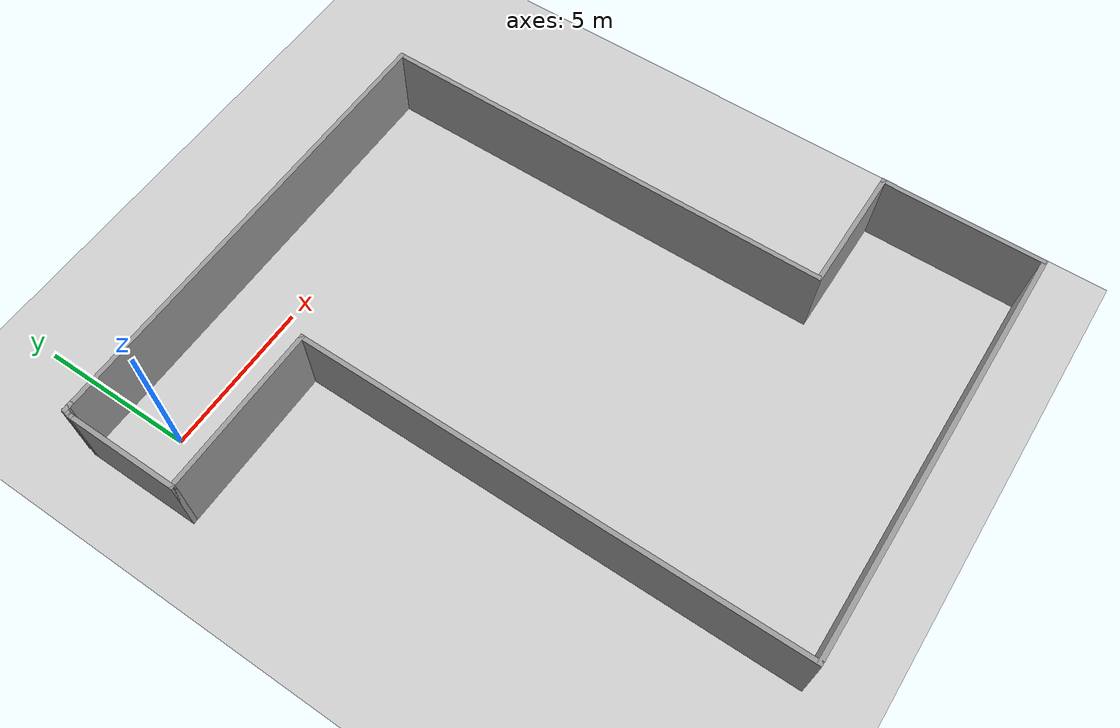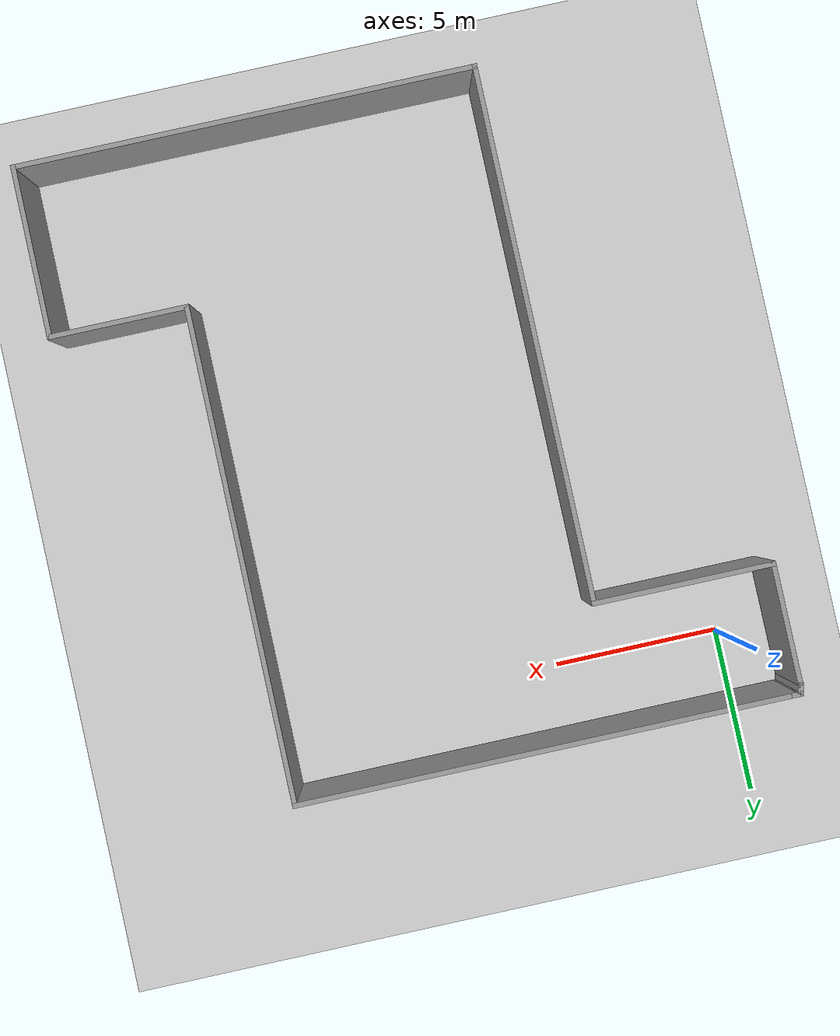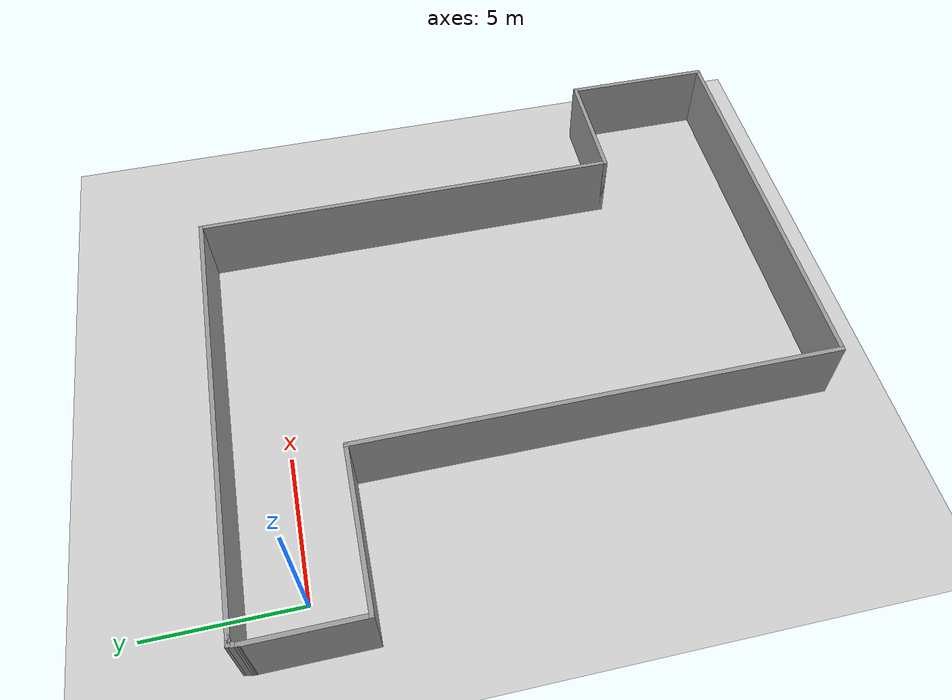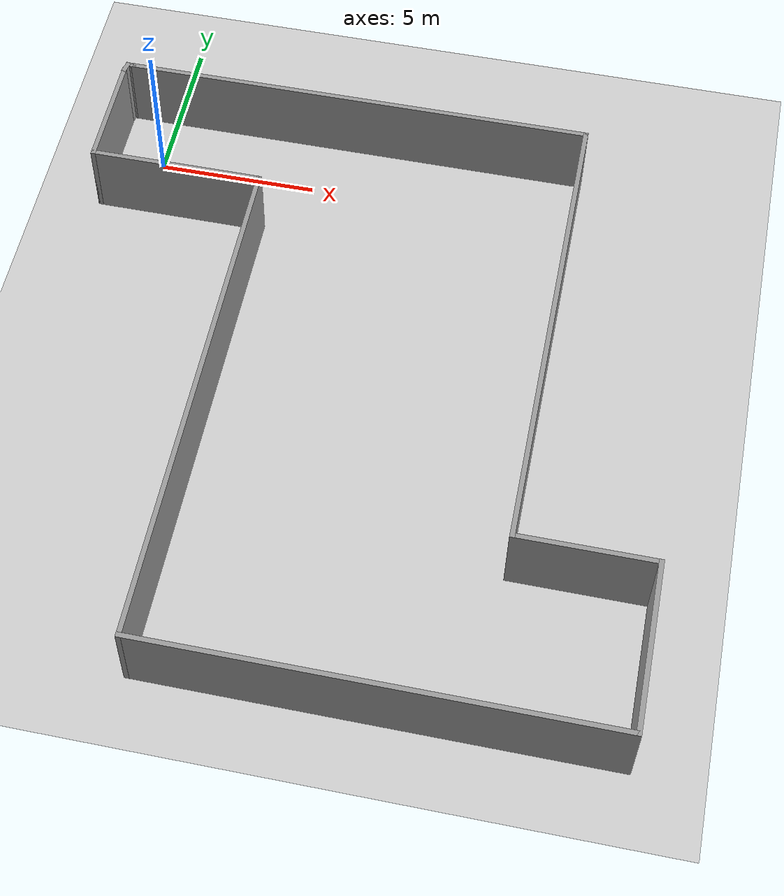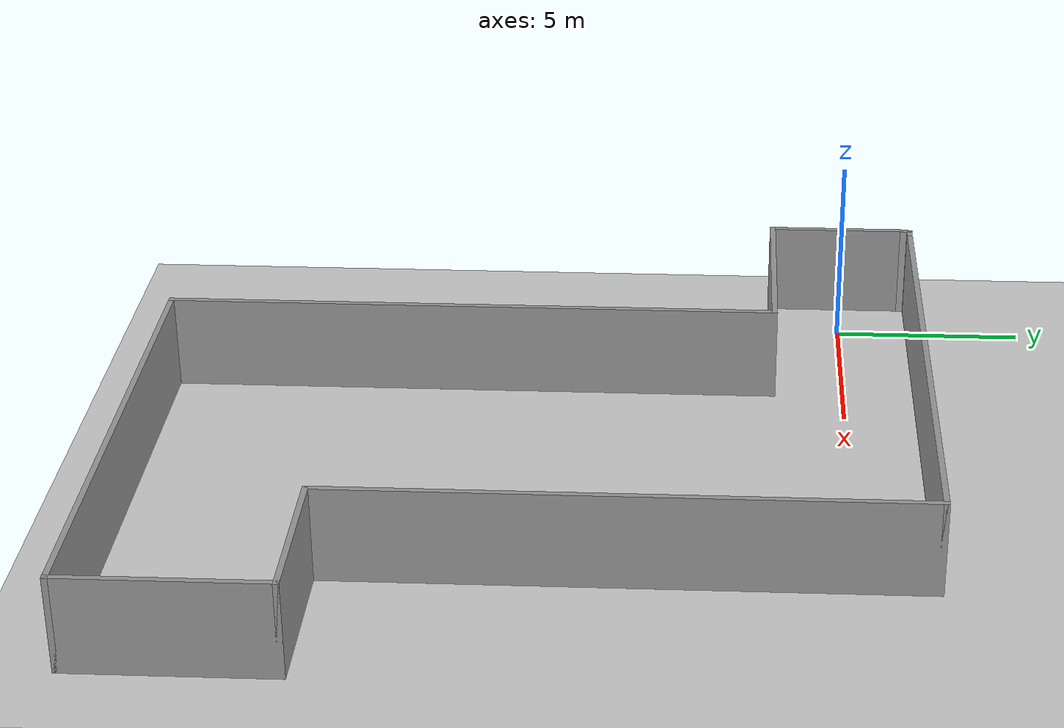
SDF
<?xml version="1.0" ?>
<sdf version="1.4">
  <world name="test_env2">
    <include>
      <uri>model://ground_plane</uri>
    </include>
    <include>
      <uri>model://sun</uri>
    </include>
    <include>
      <uri>model://test_env2</uri>
      <name>test_environment2</name>
      <pose>8.0 -8.0 0 0 0 -1.5707</pose>
    </include>
  </world>
</sdf>

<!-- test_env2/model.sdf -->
<sdf version='1.6'>
  <model name='test_env2'>
    <pose frame=''>-0.430365 1.38208 0 0 -0 0</pose>
    <link name='Wall_0'>
      <collision name='Wall_0_Collision'>
        <geometry>
          <box>
            <size>15 0.15 2.5</size>
          </box>
        </geometry>
        <pose frame=''>0 0 1.25 0 -0 0</pose>
      </collision>
      <visual name='Wall_0_Visual'>
        <pose frame=''>0 0 1.25 0 -0 0</pose>
        <geometry>
          <box>
            <size>15 0.15 2.5</size>
          </box>
        </geometry>
        <material>
          <script>
            <uri>file://media/materials/scripts/gazebo.material</uri>
            <name>Gazebo/Grey</name>
          </script>
          <ambient>1 1 1 1</ambient>
        </material>
      </visual>
      <pose frame=''>-9.96837 -1.91837 0 0 -0 1.5708</pose>
    </link>
    <link name='Wall_1'>
      <collision name='Wall_1_Collision'>
        <geometry>
          <box>
            <size>15 0.15 2.5</size>
          </box>
        </geometry>
        <pose frame=''>0 0 1.25 0 -0 0</pose>
      </collision>
      <visual name='Wall_1_Visual'>
        <pose frame=''>0 0 1.25 0 -0 0</pose>
        <geometry>
          <box>
            <size>15 0.15 2.5</size>
          </box>
        </geometry>
        <material>
          <script>
            <uri>file://media/materials/scripts/gazebo.material</uri>
            <name>Gazebo/Grey</name>
          </script>
          <ambient>1 1 1 1</ambient>
        </material>
      </visual>
      <pose frame=''>-2.54338 5.50663 0 0 -0 0</pose>
    </link>
    <link name='Wall_10'>
      <collision name='Wall_10_Collision'>
        <geometry>
          <box>
            <size>3.75 0.15 2.5</size>
          </box>
        </geometry>
        <pose frame=''>0 0 1.25 0 -0 0</pose>
      </collision>
      <visual name='Wall_10_Visual'>
        <pose frame=''>0 0 1.25 0 -0 0</pose>
        <geometry>
          <box>
            <size>3.75 0.15 2.5</size>
          </box>
        </geometry>
        <material>
          <script>
            <uri>file://media/materials/scripts/gazebo.material</uri>
            <name>Gazebo/Grey</name>
          </script>
          <ambient>1 1 1 1</ambient>
        </material>
      </visual>
      <pose frame=''>-7.91838 -9.59337 0 0 -0 3.14159</pose>
    </link>
    <link name='Wall_11'>
      <collision name='Wall_11_Collision'>
        <geometry>
          <box>
            <size>0.15 0.15 2.5</size>
          </box>
        </geometry>
        <pose frame=''>0 0 1.25 0 -0 0</pose>
      </collision>
      <visual name='Wall_11_Visual'>
        <pose frame=''>0 0 1.25 0 -0 0</pose>
        <geometry>
          <box>
            <size>0.15 0.15 2.5</size>
          </box>
        </geometry>
        <material>
          <script>
            <uri>file://media/materials/scripts/gazebo.material</uri>
            <name>Gazebo/Grey</name>
          </script>
          <ambient>1 1 1 1</ambient>
        </material>
      </visual>
      <pose frame=''>-9.71837 -9.59337 0 0 -0 0</pose>
    </link>
    <link name='Wall_16'>
      <collision name='Wall_16_Collision'>
        <geometry>
          <box>
            <size>0.25 0.15 2.5</size>
          </box>
        </geometry>
        <pose frame=''>0 0 1.25 0 -0 0</pose>
      </collision>
      <visual name='Wall_16_Visual'>
        <pose frame=''>0 0 1.25 0 -0 0</pose>
        <geometry>
          <box>
            <size>0.25 0.15 2.5</size>
          </box>
        </geometry>
        <material>
          <script>
            <uri>file://media/materials/scripts/gazebo.material</uri>
            <name>Gazebo/Grey</name>
          </script>
          <ambient>1 1 1 1</ambient>
        </material>
      </visual>
      <pose frame=''>-9.96837 -9.39337 0 0 0 -1.5708</pose>
    </link>
    <link name='Wall_19'>
      <collision name='Wall_19_Collision'>
        <geometry>
          <box>
            <size>0.25 0.15 2.5</size>
          </box>
        </geometry>
        <pose frame=''>0 0 1.25 0 -0 0</pose>
      </collision>
      <visual name='Wall_19_Visual'>
        <pose frame=''>0 0 1.25 0 -0 0</pose>
        <geometry>
          <box>
            <size>0.25 0.15 2.5</size>
          </box>
        </geometry>
        <material>
          <script>
            <uri>file://media/materials/scripts/gazebo.material</uri>
            <name>Gazebo/Grey</name>
          </script>
          <ambient>1 1 1 1</ambient>
        </material>
      </visual>
      <pose frame=''>-9.96837 -9.49337 0 0 0 -1.5708</pose>
    </link>
    <link name='Wall_20'>
      <collision name='Wall_20_Collision'>
        <geometry>
          <box>
            <size>0.404951 0.15 2.5</size>
          </box>
        </geometry>
        <pose frame=''>0 0 1.25 0 -0 0</pose>
      </collision>
      <visual name='Wall_20_Visual'>
        <pose frame=''>0 0 1.25 0 -0 0</pose>
        <geometry>
          <box>
            <size>0.404951 0.15 2.5</size>
          </box>
        </geometry>
        <material>
          <script>
            <uri>file://media/materials/scripts/gazebo.material</uri>
            <name>Gazebo/Grey</name>
          </script>
          <ambient>1 1 1 1</ambient>
        </material>
      </visual>
      <pose frame=''>-9.84337 -9.56837 0 0 0 -0.197396</pose>
    </link>
    <link name='Wall_5'>
      <collision name='Wall_5_Collision'>
        <geometry>
          <box>
            <size>4.25 0.15 2.5</size>
          </box>
        </geometry>
        <pose frame=''>0 0 1.25 0 -0 0</pose>
      </collision>
      <visual name='Wall_5_Visual'>
        <pose frame=''>0 0 1.25 0 -0 0</pose>
        <geometry>
          <box>
            <size>4.25 0.15 2.5</size>
          </box>
        </geometry>
        <material>
          <script>
            <uri>file://media/materials/scripts/gazebo.material</uri>
            <name>Gazebo/Grey</name>
          </script>
          <ambient>1 1 1 1</ambient>
        </material>
      </visual>
      <pose frame=''>4.88163 7.55663 0 0 -0 1.5708</pose>
    </link>
    <link name='Wall_6'>
      <collision name='Wall_6_Collision'>
        <geometry>
          <box>
            <size>5.25 0.15 2.5</size>
          </box>
        </geometry>
        <pose frame=''>0 0 1.25 0 -0 0</pose>
      </collision>
      <visual name='Wall_6_Visual'>
        <pose frame=''>0 0 1.25 0 -0 0</pose>
        <geometry>
          <box>
            <size>5.25 0.15 2.5</size>
          </box>
        </geometry>
        <material>
          <script>
            <uri>file://media/materials/scripts/gazebo.material</uri>
            <name>Gazebo/Grey</name>
          </script>
          <ambient>1 1 1 1</ambient>
        </material>
      </visual>
      <pose frame=''>7.43163 9.60663 0 0 -0 0</pose>
    </link>
    <link name='Wall_7'>
      <collision name='Wall_7_Collision'>
        <geometry>
          <box>
            <size>14 0.15 2.5</size>
          </box>
        </geometry>
        <pose frame=''>0 0 1.25 0 -0 0</pose>
      </collision>
      <visual name='Wall_7_Visual'>
        <pose frame=''>0 0 1.25 0 -0 0</pose>
        <geometry>
          <box>
            <size>14 0.15 2.5</size>
          </box>
        </geometry>
        <material>
          <script>
            <uri>file://media/materials/scripts/gazebo.material</uri>
            <name>Gazebo/Grey</name>
          </script>
          <ambient>1 1 1 1</ambient>
        </material>
      </visual>
      <pose frame=''>9.98163 2.68163 0 0 0 -1.5708</pose>
    </link>
    <link name='Wall_8'>
      <collision name='Wall_8_Collision'>
        <geometry>
          <box>
            <size>16.25 0.15 2.5</size>
          </box>
        </geometry>
        <pose frame=''>0 0 1.25 0 -0 0</pose>
      </collision>
      <visual name='Wall_8_Visual'>
        <pose frame=''>0 0 1.25 0 -0 0</pose>
        <geometry>
          <box>
            <size>16.25 0.15 2.5</size>
          </box>
        </geometry>
        <material>
          <script>
            <uri>file://media/materials/scripts/gazebo.material</uri>
            <name>Gazebo/Grey</name>
          </script>
          <ambient>1 1 1 1</ambient>
        </material>
      </visual>
      <pose frame=''>1.93163 -4.24337 0 0 -0 3.14159</pose>
    </link>
    <link name='Wall_9'>
      <collision name='Wall_9_Collision'>
        <geometry>
          <box>
            <size>5.5 0.15 2.5</size>
          </box>
        </geometry>
        <pose frame=''>0 0 1.25 0 -0 0</pose>
      </collision>
      <visual name='Wall_9_Visual'>
        <pose frame=''>0 0 1.25 0 -0 0</pose>
        <geometry>
          <box>
            <size>5.5 0.15 2.5</size>
          </box>
        </geometry>
        <material>
          <script>
            <uri>file://media/materials/scripts/gazebo.material</uri>
            <name>Gazebo/Grey</name>
          </script>
          <ambient>1 1 1 1</ambient>
        </material>
      </visual>
      <pose frame=''>-6.11837 -6.91837 0 0 0 -1.5708</pose>
    </link>
    <static>1</static>
  </model>
</sdf>
